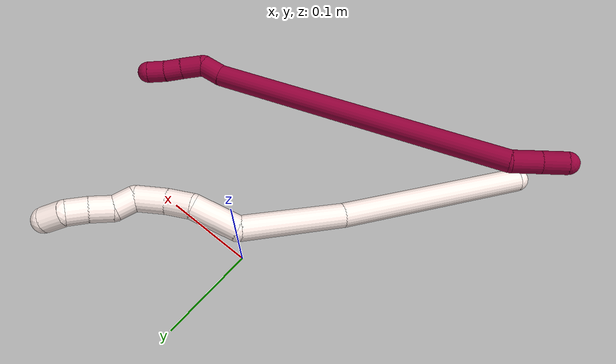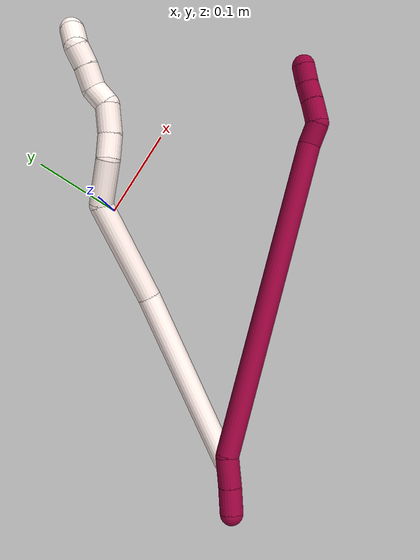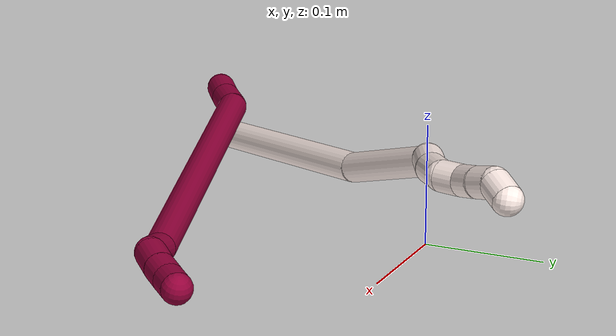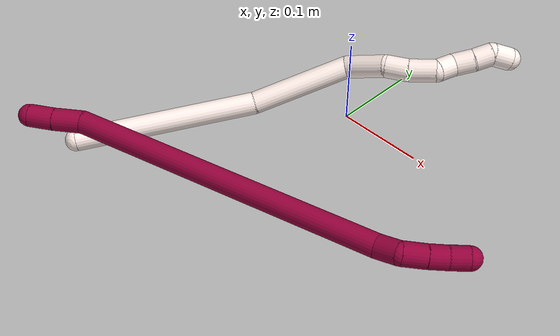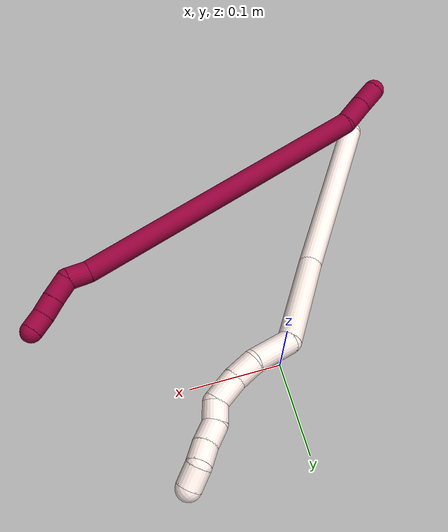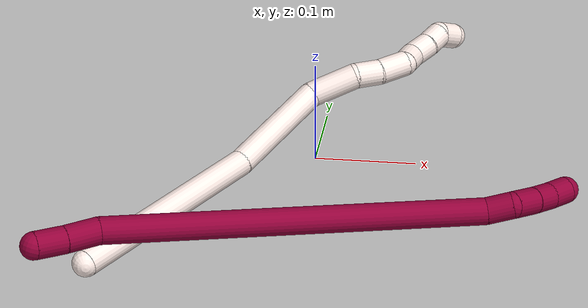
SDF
<sdf version="1.7">
 <world name="default">
  <model name="8">
   <static>0</static>
   <link name="8">
    <collision name="collision-cylinder-e_1_1_4">
     <pose>0.012104 0.004687 -0.004974 -2.38596 1.05681 -1.94744</pose>
     <geometry><cylinder><radius>0.0125</radius><length>0.027801</length></cylinder></geometry>
     <surface>
      <friction><ode><mu>1.16</mu><mu2>1.16</mu2><slip1>0</slip1><slip2>0</slip2></ode></friction>
      <contact><ode><kp>1e+06</kp><kd>1</kd><max_vel>0</max_vel><min_depth>0.001</min_depth></ode></contact>
     </surface>
    </collision>
    <visual name="visual-cylinder-e_1_1_4">
     <pose>0.012104 0.004687 -0.004974 -2.38596 1.05681 -1.94744</pose>
     <geometry><cylinder><radius>0.0125</radius><length>0.027801</length></cylinder></geometry>
     <material><ambient>0.584314 0 0.227451 1</ambient></material>
    </visual>
    <collision name="collision-cylinder-e_2_4_5">
     <pose>0.038157 0.014217 -0.016455 -2.50172 1.04404 -2.09648</pose>
     <geometry><cylinder><radius>0.0125</radius><length>0.03227</length></cylinder></geometry>
     <surface>
      <friction><ode><mu>1.16</mu><mu2>1.16</mu2><slip1>0</slip1><slip2>0</slip2></ode></friction>
      <contact><ode><kp>1e+06</kp><kd>1</kd><max_vel>0</max_vel><min_depth>0.001</min_depth></ode></contact>
     </surface>
    </collision>
    <visual name="visual-cylinder-e_2_4_5">
     <pose>0.038157 0.014217 -0.016455 -2.50172 1.04404 -2.09648</pose>
     <geometry><cylinder><radius>0.0125</radius><length>0.03227</length></cylinder></geometry>
     <material><ambient>0.584314 0 0.227451 1</ambient></material>
    </visual>
    <collision name="collision-cylinder-e_3_5_6">
     <pose>0.178278 0.125998 -0.077359 -2.04136 0.810564 -1.2209</pose>
     <geometry><cylinder><radius>0.0125</radius><length>0.348221</length></cylinder></geometry>
     <surface>
      <friction><ode><mu>1.16</mu><mu2>1.16</mu2><slip1>0</slip1><slip2>0</slip2></ode></friction>
      <contact><ode><kp>1e+06</kp><kd>1</kd><max_vel>0</max_vel><min_depth>0.001</min_depth></ode></contact>
     </surface>
    </collision>
    <visual name="visual-cylinder-e_3_5_6">
     <pose>0.178278 0.125998 -0.077359 -2.04136 0.810564 -1.2209</pose>
     <geometry><cylinder><radius>0.0125</radius><length>0.348221</length></cylinder></geometry>
     <material><ambient>0.584314 0 0.227451 1</ambient></material>
    </visual>
    <collision name="collision-cylinder-e_4_6_7">
     <pose>0.311293 0.241162 -0.137995 -2.21973 0.585167 -1.09047</pose>
     <geometry><cylinder><radius>0.0125</radius><length>0.024772</length></cylinder></geometry>
     <surface>
      <friction><ode><mu>1.16</mu><mu2>1.16</mu2><slip1>0</slip1><slip2>0</slip2></ode></friction>
      <contact><ode><kp>1e+06</kp><kd>1</kd><max_vel>0</max_vel><min_depth>0.001</min_depth></ode></contact>
     </surface>
    </collision>
    <visual name="visual-cylinder-e_4_6_7">
     <pose>0.311293 0.241162 -0.137995 -2.21973 0.585167 -1.09047</pose>
     <geometry><cylinder><radius>0.0125</radius><length>0.024772</length></cylinder></geometry>
     <material><ambient>0.584314 0 0.227451 1</ambient></material>
    </visual>
    <collision name="collision-cylinder-e_5_7_8">
     <pose>0.330116 0.251977 -0.148023 -2.54197 1.2051 -2.2969</pose>
     <geometry><cylinder><radius>0.0125</radius><length>0.02566</length></cylinder></geometry>
     <surface>
      <friction><ode><mu>1.16</mu><mu2>1.16</mu2><slip1>0</slip1><slip2>0</slip2></ode></friction>
      <contact><ode><kp>1e+06</kp><kd>1</kd><max_vel>0</max_vel><min_depth>0.001</min_depth></ode></contact>
     </surface>
    </collision>
    <visual name="visual-cylinder-e_5_7_8">
     <pose>0.330116 0.251977 -0.148023 -2.54197 1.2051 -2.2969</pose>
     <geometry><cylinder><radius>0.0125</radius><length>0.02566</length></cylinder></geometry>
     <material><ambient>0.584314 0 0.227451 1</ambient></material>
    </visual>
    <collision name="collision-cylinder-e_6_8_9">
     <pose>0.351796 0.256079 -0.1551 -2.71066 1.21351 -2.53069</pose>
     <geometry><cylinder><radius>0.0125</radius><length>0.020706</length></cylinder></geometry>
     <surface>
      <friction><ode><mu>1.16</mu><mu2>1.16</mu2><slip1>0</slip1><slip2>0</slip2></ode></friction>
      <contact><ode><kp>1e+06</kp><kd>1</kd><max_vel>0</max_vel><min_depth>0.001</min_depth></ode></contact>
     </surface>
    </collision>
    <visual name="visual-cylinder-e_6_8_9">
     <pose>0.351796 0.256079 -0.1551 -2.71066 1.21351 -2.53069</pose>
     <geometry><cylinder><radius>0.0125</radius><length>0.020706</length></cylinder></geometry>
     <material><ambient>0.584314 0 0.227451 1</ambient></material>
    </visual>
    <collision name="collision-cylinder-e_7_9_2">
     <pose>0.370663 0.25959 -0.162603 -2.6987 1.10025 -2.43793</pose>
     <geometry><cylinder><radius>0.0125</radius><length>0.02057</length></cylinder></geometry>
     <surface>
      <friction><ode><mu>1.16</mu><mu2>1.16</mu2><slip1>0</slip1><slip2>0</slip2></ode></friction>
      <contact><ode><kp>1e+06</kp><kd>1</kd><max_vel>0</max_vel><min_depth>0.001</min_depth></ode></contact>
     </surface>
    </collision>
    <visual name="visual-cylinder-e_7_9_2">
     <pose>0.370663 0.25959 -0.162603 -2.6987 1.10025 -2.43793</pose>
     <geometry><cylinder><radius>0.0125</radius><length>0.02057</length></cylinder></geometry>
     <material><ambient>0.584314 0 0.227451 1</ambient></material>
    </visual>
    <collision name="collision-sphere-2">
     <pose>0.37983 0.261588 -0.166816 0 -0 0</pose>
     <geometry><sphere><radius>0.0125</radius></sphere></geometry>
     <surface>
      <friction><ode><mu>1.16</mu><mu2>1.16</mu2><slip1>0</slip1><slip2>0</slip2></ode></friction>
      <contact><ode><kp>1e+06</kp><kd>1</kd><max_vel>0</max_vel><min_depth>0.001</min_depth></ode></contact>
     </surface>
    </collision>
    <visual name="visual-sphere-2">
     <pose>0.37983 0.261588 -0.166816 0 -0 0</pose>
     <geometry><sphere><radius>0.0125</radius></sphere></geometry>
     <material><ambient>0.584314 0 0.227451 1</ambient></material>
    </visual>
    <collision name="collision-sphere-9">
     <pose>0.361496 0.257591 -0.15839 0 -0 0</pose>
     <geometry><sphere><radius>0.0125</radius></sphere></geometry>
     <surface>
      <friction><ode><mu>1.16</mu><mu2>1.16</mu2><slip1>0</slip1><slip2>0</slip2></ode></friction>
      <contact><ode><kp>1e+06</kp><kd>1</kd><max_vel>0</max_vel><min_depth>0.001</min_depth></ode></contact>
     </surface>
    </collision>
    <visual name="visual-sphere-9">
     <pose>0.361496 0.257591 -0.15839 0 -0 0</pose>
     <geometry><sphere><radius>0.0125</radius></sphere></geometry>
     <material><ambient>0.584314 0 0.227451 1</ambient></material>
    </visual>
    <collision name="collision-sphere-4">
     <pose>0.024209 0.009373 -0.009949 0 -0 0</pose>
     <geometry><sphere><radius>0.0125</radius></sphere></geometry>
     <surface>
      <friction><ode><mu>1.16</mu><mu2>1.16</mu2><slip1>0</slip1><slip2>0</slip2></ode></friction>
      <contact><ode><kp>1e+06</kp><kd>1</kd><max_vel>0</max_vel><min_depth>0.001</min_depth></ode></contact>
     </surface>
    </collision>
    <visual name="visual-sphere-4">
     <pose>0.024209 0.009373 -0.009949 0 -0 0</pose>
     <geometry><sphere><radius>0.0125</radius></sphere></geometry>
     <material><ambient>0.584314 0 0.227451 1</ambient></material>
    </visual>
    <collision name="collision-sphere-1">
     <geometry><sphere><radius>0.0125</radius></sphere></geometry>
     <surface>
      <friction><ode><mu>1.16</mu><mu2>1.16</mu2><slip1>0</slip1><slip2>0</slip2></ode></friction>
      <contact><ode><kp>1e+06</kp><kd>1</kd><max_vel>0</max_vel><min_depth>0.001</min_depth></ode></contact>
     </surface>
    </collision>
    <visual name="visual-sphere-1">
     <geometry><sphere><radius>0.0125</radius></sphere></geometry>
     <material><ambient>0.584314 0 0.227451 1</ambient></material>
    </visual>
    <collision name="collision-sphere-8">
     <pose>0.342097 0.254566 -0.15181 0 -0 0</pose>
     <geometry><sphere><radius>0.0125</radius></sphere></geometry>
     <surface>
      <friction><ode><mu>1.16</mu><mu2>1.16</mu2><slip1>0</slip1><slip2>0</slip2></ode></friction>
      <contact><ode><kp>1e+06</kp><kd>1</kd><max_vel>0</max_vel><min_depth>0.001</min_depth></ode></contact>
     </surface>
    </collision>
    <visual name="visual-sphere-8">
     <pose>0.342097 0.254566 -0.15181 0 -0 0</pose>
     <geometry><sphere><radius>0.0125</radius></sphere></geometry>
     <material><ambient>0.584314 0 0.227451 1</ambient></material>
    </visual>
    <collision name="collision-sphere-5">
     <pose>0.052104 0.01906 -0.022962 0 -0 0</pose>
     <geometry><sphere><radius>0.0125</radius></sphere></geometry>
     <surface>
      <friction><ode><mu>1.16</mu><mu2>1.16</mu2><slip1>0</slip1><slip2>0</slip2></ode></friction>
      <contact><ode><kp>1e+06</kp><kd>1</kd><max_vel>0</max_vel><min_depth>0.001</min_depth></ode></contact>
     </surface>
    </collision>
    <visual name="visual-sphere-5">
     <pose>0.052104 0.01906 -0.022962 0 -0 0</pose>
     <geometry><sphere><radius>0.0125</radius></sphere></geometry>
     <material><ambient>0.584314 0 0.227451 1</ambient></material>
    </visual>
    <collision name="collision-sphere-6">
     <pose>0.304452 0.232935 -0.131755 0 -0 0</pose>
     <geometry><sphere><radius>0.0125</radius></sphere></geometry>
     <surface>
      <friction><ode><mu>1.16</mu><mu2>1.16</mu2><slip1>0</slip1><slip2>0</slip2></ode></friction>
      <contact><ode><kp>1e+06</kp><kd>1</kd><max_vel>0</max_vel><min_depth>0.001</min_depth></ode></contact>
     </surface>
    </collision>
    <visual name="visual-sphere-6">
     <pose>0.304452 0.232935 -0.131755 0 -0 0</pose>
     <geometry><sphere><radius>0.0125</radius></sphere></geometry>
     <material><ambient>0.584314 0 0.227451 1</ambient></material>
    </visual>
    <collision name="collision-sphere-7">
     <pose>0.318134 0.249388 -0.144235 0 -0 0</pose>
     <geometry><sphere><radius>0.0125</radius></sphere></geometry>
     <surface>
      <friction><ode><mu>1.16</mu><mu2>1.16</mu2><slip1>0</slip1><slip2>0</slip2></ode></friction>
      <contact><ode><kp>1e+06</kp><kd>1</kd><max_vel>0</max_vel><min_depth>0.001</min_depth></ode></contact>
     </surface>
    </collision>
    <visual name="visual-sphere-7">
     <pose>0.318134 0.249388 -0.144235 0 -0 0</pose>
     <geometry><sphere><radius>0.0125</radius></sphere></geometry>
     <material><ambient>0.584314 0 0.227451 1</ambient></material>
    </visual>
    <inertial>
     <pose>0.189478 0.135092 -0.08276 0 -0 0</pose>
     <mass>0.5</mass>
     <inertia>
      <ixx>-0.001431</ixx>
      <ixy>0</ixy>
      <ixz>0</ixz>
      <iyy>-0.000667</iyy>
      <iyz>0</iyz>
      <izz>-0.004759</izz>
     </inertia>
    </inertial>
   </link>
   <pose>-0.207115 -0.286913 0.04445 -3.10561 0.426872 0.974289</pose>
  </model>
  <model name="11">
   <static>0</static>
   <link name="11">
    <collision name="collision-cylinder-e_1_1_4">
     <pose>0.002343 0.076929 -0.065414 -2.27547 0.023201 -0.050174</pose>
     <geometry><cylinder><radius>0.0125</radius><length>0.202015</length></cylinder></geometry>
     <surface>
      <friction><ode><mu>1.16</mu><mu2>1.16</mu2><slip1>0</slip1><slip2>0</slip2></ode></friction>
      <contact><ode><kp>1e+06</kp><kd>1</kd><max_vel>0</max_vel><min_depth>0.001</min_depth></ode></contact>
     </surface>
    </collision>
    <visual name="visual-cylinder-e_1_1_4">
     <pose>0.002343 0.076929 -0.065414 -2.27547 0.023201 -0.050174</pose>
     <geometry><cylinder><radius>0.0125</radius><length>0.202015</length></cylinder></geometry>
     <material><ambient>1 0.933333 0.909804 1</ambient></material>
    </visual>
    <collision name="collision-cylinder-e_2_4_5">
     <pose>-0.004772 0.196039 -0.165121 -2.25344 -0.172266 0.359067</pose>
     <geometry><cylinder><radius>0.0125</radius><length>0.110358</length></cylinder></geometry>
     <surface>
      <friction><ode><mu>1.16</mu><mu2>1.16</mu2><slip1>0</slip1><slip2>0</slip2></ode></friction>
      <contact><ode><kp>1e+06</kp><kd>1</kd><max_vel>0</max_vel><min_depth>0.001</min_depth></ode></contact>
     </surface>
    </collision>
    <visual name="visual-cylinder-e_2_4_5">
     <pose>-0.004772 0.196039 -0.165121 -2.25344 -0.172266 0.359067</pose>
     <geometry><cylinder><radius>0.0125</radius><length>0.110358</length></cylinder></geometry>
     <material><ambient>1 0.933333 0.909804 1</ambient></material>
    </visual>
    <collision name="collision-cylinder-e_3_5_6">
     <pose>-0.016037 0.261823 -0.200679 -1.62428 -0.07629 0.080479</pose>
     <geometry><cylinder><radius>0.0125</radius><length>0.047413</length></cylinder></geometry>
     <surface>
      <friction><ode><mu>1.16</mu><mu2>1.16</mu2><slip1>0</slip1><slip2>0</slip2></ode></friction>
      <contact><ode><kp>1e+06</kp><kd>1</kd><max_vel>0</max_vel><min_depth>0.001</min_depth></ode></contact>
     </surface>
    </collision>
    <visual name="visual-cylinder-e_3_5_6">
     <pose>-0.016037 0.261823 -0.200679 -1.62428 -0.07629 0.080479</pose>
     <geometry><cylinder><radius>0.0125</radius><length>0.047413</length></cylinder></geometry>
     <material><ambient>1 0.933333 0.909804 1</ambient></material>
    </visual>
    <collision name="collision-cylinder-e_4_6_7">
     <pose>-0.014967 0.297446 -0.204722 -1.79802 0.22915 -0.287453</pose>
     <geometry><cylinder><radius>0.0125</radius><length>0.025334</length></cylinder></geometry>
     <surface>
      <friction><ode><mu>1.16</mu><mu2>1.16</mu2><slip1>0</slip1><slip2>0</slip2></ode></friction>
      <contact><ode><kp>1e+06</kp><kd>1</kd><max_vel>0</max_vel><min_depth>0.001</min_depth></ode></contact>
     </surface>
    </collision>
    <visual name="visual-cylinder-e_4_6_7">
     <pose>-0.014967 0.297446 -0.204722 -1.79802 0.22915 -0.287453</pose>
     <geometry><cylinder><radius>0.0125</radius><length>0.025334</length></cylinder></geometry>
     <material><ambient>1 0.933333 0.909804 1</ambient></material>
    </visual>
    <collision name="collision-cylinder-e_5_7_8">
     <pose>-0.010469 0.32332 -0.212924 -1.94393 0.10849 -0.158799</pose>
     <geometry><cylinder><radius>0.0125</radius><length>0.029934</length></cylinder></geometry>
     <surface>
      <friction><ode><mu>1.16</mu><mu2>1.16</mu2><slip1>0</slip1><slip2>0</slip2></ode></friction>
      <contact><ode><kp>1e+06</kp><kd>1</kd><max_vel>0</max_vel><min_depth>0.001</min_depth></ode></contact>
     </surface>
    </collision>
    <visual name="visual-cylinder-e_5_7_8">
     <pose>-0.010469 0.32332 -0.212924 -1.94393 0.10849 -0.158799</pose>
     <geometry><cylinder><radius>0.0125</radius><length>0.029934</length></cylinder></geometry>
     <material><ambient>1 0.933333 0.909804 1</ambient></material>
    </visual>
    <collision name="collision-cylinder-e_6_8_9">
     <pose>-0.008535 0.342604 -0.227039 -2.58319 0.030605 -0.106661</pose>
     <geometry><cylinder><radius>0.0125</radius><length>0.020503</length></cylinder></geometry>
     <surface>
      <friction><ode><mu>1.16</mu><mu2>1.16</mu2><slip1>0</slip1><slip2>0</slip2></ode></friction>
      <contact><ode><kp>1e+06</kp><kd>1</kd><max_vel>0</max_vel><min_depth>0.001</min_depth></ode></contact>
     </surface>
    </collision>
    <visual name="visual-cylinder-e_6_8_9">
     <pose>-0.008535 0.342604 -0.227039 -2.58319 0.030605 -0.106661</pose>
     <geometry><cylinder><radius>0.0125</radius><length>0.020503</length></cylinder></geometry>
     <material><ambient>1 0.933333 0.909804 1</ambient></material>
    </visual>
    <collision name="collision-cylinder-e_7_9_10">
     <pose>-0.008956 0.357587 -0.241983 -2.15041 -0.064291 0.118828</pose>
     <geometry><cylinder><radius>0.0125</radius><length>0.022886</length></cylinder></geometry>
     <surface>
      <friction><ode><mu>1.16</mu><mu2>1.16</mu2><slip1>0</slip1><slip2>0</slip2></ode></friction>
      <contact><ode><kp>1e+06</kp><kd>1</kd><max_vel>0</max_vel><min_depth>0.001</min_depth></ode></contact>
     </surface>
    </collision>
    <visual name="visual-cylinder-e_7_9_10">
     <pose>-0.008956 0.357587 -0.241983 -2.15041 -0.064291 0.118828</pose>
     <geometry><cylinder><radius>0.0125</radius><length>0.022886</length></cylinder></geometry>
     <material><ambient>1 0.933333 0.909804 1</ambient></material>
    </visual>
    <collision name="collision-cylinder-e_8_10_11">
     <pose>-0.010876 0.374871 -0.254717 -2.26841 -0.11695 0.249614</pose>
     <geometry><cylinder><radius>0.0125</radius><length>0.020311</length></cylinder></geometry>
     <surface>
      <friction><ode><mu>1.16</mu><mu2>1.16</mu2><slip1>0</slip1><slip2>0</slip2></ode></friction>
      <contact><ode><kp>1e+06</kp><kd>1</kd><max_vel>0</max_vel><min_depth>0.001</min_depth></ode></contact>
     </surface>
    </collision>
    <visual name="visual-cylinder-e_8_10_11">
     <pose>-0.010876 0.374871 -0.254717 -2.26841 -0.11695 0.249614</pose>
     <geometry><cylinder><radius>0.0125</radius><length>0.020311</length></cylinder></geometry>
     <material><ambient>1 0.933333 0.909804 1</ambient></material>
    </visual>
    <collision name="collision-cylinder-e_9_11_2">
     <pose>-0.006998 0.389805 -0.267138 -2.26053 0.496775 -0.987149</pose>
     <geometry><cylinder><radius>0.0125</radius><length>0.021246</length></cylinder></geometry>
     <surface>
      <friction><ode><mu>1.16</mu><mu2>1.16</mu2><slip1>0</slip1><slip2>0</slip2></ode></friction>
      <contact><ode><kp>1e+06</kp><kd>1</kd><max_vel>0</max_vel><min_depth>0.001</min_depth></ode></contact>
     </surface>
    </collision>
    <visual name="visual-cylinder-e_9_11_2">
     <pose>-0.006998 0.389805 -0.267138 -2.26053 0.496775 -0.987149</pose>
     <geometry><cylinder><radius>0.0125</radius><length>0.021246</length></cylinder></geometry>
     <material><ambient>1 0.933333 0.909804 1</ambient></material>
    </visual>
    <collision name="collision-sphere-2">
     <pose>-0.001935 0.397009 -0.273081 0 -0 0</pose>
     <geometry><sphere><radius>0.0125</radius></sphere></geometry>
     <surface>
      <friction><ode><mu>1.16</mu><mu2>1.16</mu2><slip1>0</slip1><slip2>0</slip2></ode></friction>
      <contact><ode><kp>1e+06</kp><kd>1</kd><max_vel>0</max_vel><min_depth>0.001</min_depth></ode></contact>
     </surface>
    </collision>
    <visual name="visual-sphere-2">
     <pose>-0.001935 0.397009 -0.273081 0 -0 0</pose>
     <geometry><sphere><radius>0.0125</radius></sphere></geometry>
     <material><ambient>1 0.933333 0.909804 1</ambient></material>
    </visual>
    <collision name="collision-sphere-11">
     <pose>-0.012061 0.3826 -0.261196 0 -0 0</pose>
     <geometry><sphere><radius>0.0125</radius></sphere></geometry>
     <surface>
      <friction><ode><mu>1.16</mu><mu2>1.16</mu2><slip1>0</slip1><slip2>0</slip2></ode></friction>
      <contact><ode><kp>1e+06</kp><kd>1</kd><max_vel>0</max_vel><min_depth>0.001</min_depth></ode></contact>
     </surface>
    </collision>
    <visual name="visual-sphere-11">
     <pose>-0.012061 0.3826 -0.261196 0 -0 0</pose>
     <geometry><sphere><radius>0.0125</radius></sphere></geometry>
     <material><ambient>1 0.933333 0.909804 1</ambient></material>
    </visual>
    <collision name="collision-sphere-10">
     <pose>-0.009691 0.367141 -0.248238 0 -0 0</pose>
     <geometry><sphere><radius>0.0125</radius></sphere></geometry>
     <surface>
      <friction><ode><mu>1.16</mu><mu2>1.16</mu2><slip1>0</slip1><slip2>0</slip2></ode></friction>
      <contact><ode><kp>1e+06</kp><kd>1</kd><max_vel>0</max_vel><min_depth>0.001</min_depth></ode></contact>
     </surface>
    </collision>
    <visual name="visual-sphere-10">
     <pose>-0.009691 0.367141 -0.248238 0 -0 0</pose>
     <geometry><sphere><radius>0.0125</radius></sphere></geometry>
     <material><ambient>1 0.933333 0.909804 1</ambient></material>
    </visual>
    <collision name="collision-sphere-9">
     <pose>-0.008221 0.348033 -0.235729 0 -0 0</pose>
     <geometry><sphere><radius>0.0125</radius></sphere></geometry>
     <surface>
      <friction><ode><mu>1.16</mu><mu2>1.16</mu2><slip1>0</slip1><slip2>0</slip2></ode></friction>
      <contact><ode><kp>1e+06</kp><kd>1</kd><max_vel>0</max_vel><min_depth>0.001</min_depth></ode></contact>
     </surface>
    </collision>
    <visual name="visual-sphere-9">
     <pose>-0.008221 0.348033 -0.235729 0 -0 0</pose>
     <geometry><sphere><radius>0.0125</radius></sphere></geometry>
     <material><ambient>1 0.933333 0.909804 1</ambient></material>
    </visual>
    <collision name="collision-sphere-4">
     <pose>0.004687 0.153859 -0.130827 0 -0 0</pose>
     <geometry><sphere><radius>0.0125</radius></sphere></geometry>
     <surface>
      <friction><ode><mu>1.16</mu><mu2>1.16</mu2><slip1>0</slip1><slip2>0</slip2></ode></friction>
      <contact><ode><kp>1e+06</kp><kd>1</kd><max_vel>0</max_vel><min_depth>0.001</min_depth></ode></contact>
     </surface>
    </collision>
    <visual name="visual-sphere-4">
     <pose>0.004687 0.153859 -0.130827 0 -0 0</pose>
     <geometry><sphere><radius>0.0125</radius></sphere></geometry>
     <material><ambient>1 0.933333 0.909804 1</ambient></material>
    </visual>
    <collision name="collision-sphere-1">
     <geometry><sphere><radius>0.0125</radius></sphere></geometry>
     <surface>
      <friction><ode><mu>1.16</mu><mu2>1.16</mu2><slip1>0</slip1><slip2>0</slip2></ode></friction>
      <contact><ode><kp>1e+06</kp><kd>1</kd><max_vel>0</max_vel><min_depth>0.001</min_depth></ode></contact>
     </surface>
    </collision>
    <visual name="visual-sphere-1">
     <geometry><sphere><radius>0.0125</radius></sphere></geometry>
     <material><ambient>1 0.933333 0.909804 1</ambient></material>
    </visual>
    <collision name="collision-sphere-8">
     <pose>-0.008848 0.337175 -0.218348 0 -0 0</pose>
     <geometry><sphere><radius>0.0125</radius></sphere></geometry>
     <surface>
      <friction><ode><mu>1.16</mu><mu2>1.16</mu2><slip1>0</slip1><slip2>0</slip2></ode></friction>
      <contact><ode><kp>1e+06</kp><kd>1</kd><max_vel>0</max_vel><min_depth>0.001</min_depth></ode></contact>
     </surface>
    </collision>
    <visual name="visual-sphere-8">
     <pose>-0.008848 0.337175 -0.218348 0 -0 0</pose>
     <geometry><sphere><radius>0.0125</radius></sphere></geometry>
     <material><ambient>1 0.933333 0.909804 1</ambient></material>
    </visual>
    <collision name="collision-sphere-5">
     <pose>-0.014231 0.238219 -0.199415 0 -0 0</pose>
     <geometry><sphere><radius>0.0125</radius></sphere></geometry>
     <surface>
      <friction><ode><mu>1.16</mu><mu2>1.16</mu2><slip1>0</slip1><slip2>0</slip2></ode></friction>
      <contact><ode><kp>1e+06</kp><kd>1</kd><max_vel>0</max_vel><min_depth>0.001</min_depth></ode></contact>
     </surface>
    </collision>
    <visual name="visual-sphere-5">
     <pose>-0.014231 0.238219 -0.199415 0 -0 0</pose>
     <geometry><sphere><radius>0.0125</radius></sphere></geometry>
     <material><ambient>1 0.933333 0.909804 1</ambient></material>
    </visual>
    <collision name="collision-sphere-6">
     <pose>-0.017844 0.285427 -0.201943 0 -0 0</pose>
     <geometry><sphere><radius>0.0125</radius></sphere></geometry>
     <surface>
      <friction><ode><mu>1.16</mu><mu2>1.16</mu2><slip1>0</slip1><slip2>0</slip2></ode></friction>
      <contact><ode><kp>1e+06</kp><kd>1</kd><max_vel>0</max_vel><min_depth>0.001</min_depth></ode></contact>
     </surface>
    </collision>
    <visual name="visual-sphere-6">
     <pose>-0.017844 0.285427 -0.201943 0 -0 0</pose>
     <geometry><sphere><radius>0.0125</radius></sphere></geometry>
     <material><ambient>1 0.933333 0.909804 1</ambient></material>
    </visual>
    <collision name="collision-sphere-7">
     <pose>-0.012089 0.309465 -0.207501 0 -0 0</pose>
     <geometry><sphere><radius>0.0125</radius></sphere></geometry>
     <surface>
      <friction><ode><mu>1.16</mu><mu2>1.16</mu2><slip1>0</slip1><slip2>0</slip2></ode></friction>
      <contact><ode><kp>1e+06</kp><kd>1</kd><max_vel>0</max_vel><min_depth>0.001</min_depth></ode></contact>
     </surface>
    </collision>
    <visual name="visual-sphere-7">
     <pose>-0.012089 0.309465 -0.207501 0 -0 0</pose>
     <geometry><sphere><radius>0.0125</radius></sphere></geometry>
     <material><ambient>1 0.933333 0.909804 1</ambient></material>
    </visual>
    <inertial>
     <pose>-0.004511 0.195813 -0.147108 0 -0 0</pose>
     <mass>0.5</mass>
     <inertia>
      <ixx>0.000827</ixx>
      <ixy>0</ixy>
      <ixz>0</ixz>
      <iyy>-0.000482</iyy>
      <iyz>0</iyz>
      <izz>-0.000657</izz>
     </inertia>
    </inertial>
   </link>
   <pose>-0.170935 -0.256474 0.012966 1.19355 1.27825 -0.108304</pose>
  </model>
 </world>
</sdf>
